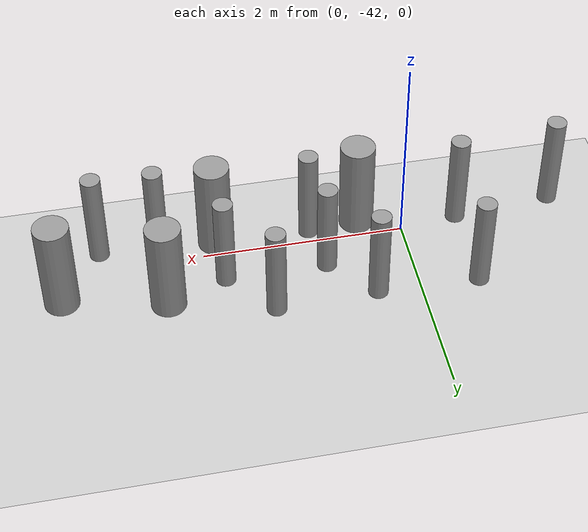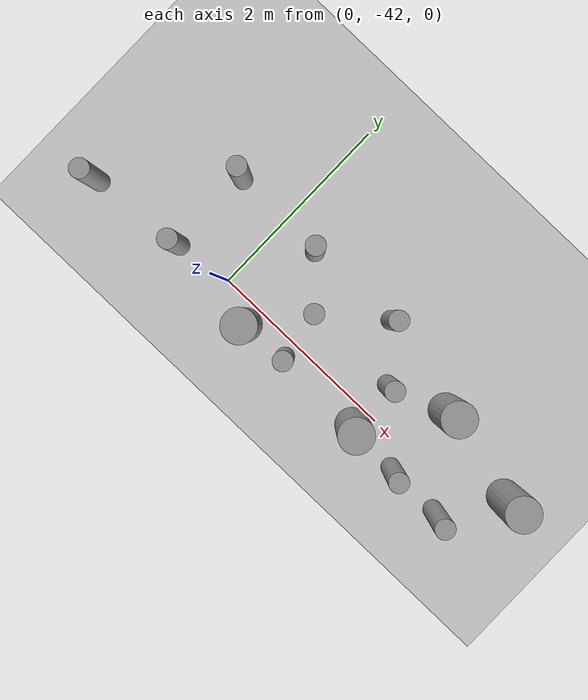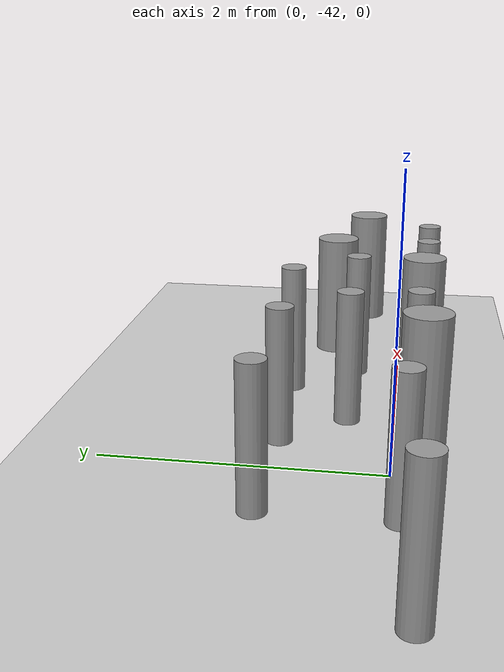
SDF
<sdf version="1.6">
 <world name="default">
  <model name="ground_plane">
   <static>1</static>
   <link name="link">
    <collision name="collision">
     <geometry><plane><normal>0 0 1</normal><size>100 100</size></plane></geometry>
     <surface><friction><ode><mu>100</mu><mu2>50</mu2></ode></friction></surface>
    </collision>
    <visual name="visual">
     <cast_shadows>0</cast_shadows>
     <geometry><plane><normal>0 0 1</normal><size>100 100</size></plane></geometry>
     <material>
      <script><uri>file://media/materials/scripts/gazebo.material</uri><name>Gazebo/Grey</name></script>
     </material>
    </visual>
   </link>
  </model>
  <model name="cyl_wall_clone_clone_2">
   <link name="link_0">
    <pose>-2.73893 -0.366465 0 0 -0 0</pose>
    <inertial>
     <mass>0.0374993</mass>
     <inertia>
      <ixx>0.00321281</ixx>
      <ixy>0</ixy>
      <ixz>0</ixz>
      <iyy>0.00321281</iyy>
      <iyz>0</iyz>
      <izz>0.000175774</izz>
     </inertia>
    </inertial>
    <visual name="visual">
     <geometry><cylinder><radius>0.0968661</radius><length>1</length></cylinder></geometry>
     <material>
      <lighting>1</lighting>
      <script><uri>file://media/materials/scripts/gazebo.material</uri><name>Gazebo/Grey</name></script>
      <ambient>0.3 0.3 0.3 1</ambient>
      <diffuse>0.7 0.7 0.7 1</diffuse>
      <specular>0.01 0.01 0.01 1</specular>
      <emissive>0 0 0 1</emissive>
     </material>
    </visual>
    <collision name="collision">
     <geometry><cylinder><radius>0.096866</radius><length>1</length></cylinder></geometry>
     <surface>
      <friction>
       <ode><mu>1</mu><mu2>1</mu2><fdir1>0 0 0</fdir1><slip1>0</slip1><slip2>0</slip2></ode>
       <torsional>
        <coefficient>1</coefficient>
        <patch_radius>0</patch_radius>
        <surface_radius>0</surface_radius>
        <use_patch_radius>1</use_patch_radius>
        <ode><slip>0</slip></ode>
       </torsional>
      </friction>
      <bounce><restitution_coefficient>0</restitution_coefficient><threshold>1e+06</threshold></bounce>
      <contact>
       <collide_without_contact>0</collide_without_contact>
       <collide_without_contact_bitmask>1</collide_without_contact_bitmask>
       <collide_bitmask>1</collide_bitmask>
       <ode>
        <soft_cfm>0</soft_cfm>
        <soft_erp>0.2</soft_erp>
        <kp>1e+13</kp>
        <kd>1</kd>
        <max_vel>0.01</max_vel>
        <min_depth>0</min_depth>
       </ode>
       <bullet>
        <split_impulse>1</split_impulse>
        <split_impulse_penetration_threshold>-0.01</split_impulse_penetration_threshold>
        <soft_cfm>0</soft_cfm>
        <soft_erp>0.2</soft_erp>
        <kp>1e+13</kp>
        <kd>1</kd>
       </bullet>
      </contact>
     </surface>
    </collision>
   </link>
   <link name="link_0_clone">
    <pose>-1.73893 0.61877 0 0 -0 0</pose>
    <inertial>
     <mass>0.0374993</mass>
     <inertia>
      <ixx>0.00321281</ixx>
      <ixy>0</ixy>
      <ixz>0</ixz>
      <iyy>0.00321281</iyy>
      <iyz>0</iyz>
      <izz>0.000175774</izz>
     </inertia>
    </inertial>
    <visual name="visual">
     <geometry><cylinder><radius>0.0968661</radius><length>1</length></cylinder></geometry>
     <material>
      <lighting>1</lighting>
      <script><uri>file://media/materials/scripts/gazebo.material</uri><name>Gazebo/Grey</name></script>
      <ambient>0.3 0.3 0.3 1</ambient>
      <diffuse>0.7 0.7 0.7 1</diffuse>
      <specular>0.01 0.01 0.01 1</specular>
      <emissive>0 0 0 1</emissive>
      <shader type="pixel"/>
     </material>
    </visual>
    <collision name="collision">
     <geometry><cylinder><radius>0.096866</radius><length>1</length></cylinder></geometry>
     <surface>
      <friction>
       <ode><mu>1</mu><mu2>1</mu2><fdir1>0 0 0</fdir1><slip1>0</slip1><slip2>0</slip2></ode>
       <torsional>
        <coefficient>1</coefficient>
        <patch_radius>0</patch_radius>
        <surface_radius>0</surface_radius>
        <use_patch_radius>1</use_patch_radius>
        <ode><slip>0</slip></ode>
       </torsional>
      </friction>
      <bounce><restitution_coefficient>0</restitution_coefficient><threshold>1e+06</threshold></bounce>
      <contact>
       <collide_without_contact>0</collide_without_contact>
       <collide_without_contact_bitmask>1</collide_without_contact_bitmask>
       <collide_bitmask>1</collide_bitmask>
       <ode>
        <soft_cfm>0</soft_cfm>
        <soft_erp>0.2</soft_erp>
        <kp>1e+13</kp>
        <kd>1</kd>
        <max_vel>0.01</max_vel>
        <min_depth>0</min_depth>
       </ode>
       <bullet>
        <split_impulse>1</split_impulse>
        <split_impulse_penetration_threshold>-0.01</split_impulse_penetration_threshold>
        <soft_cfm>0</soft_cfm>
        <soft_erp>0.2</soft_erp>
        <kp>1e+13</kp>
        <kd>1</kd>
       </bullet>
      </contact>
     </surface>
    </collision>
   </link>
   <link name="link_0_clone_clone">
    <pose>-0.327073 0.143919 0 0 -0 0</pose>
    <inertial>
     <mass>0.0374993</mass>
     <inertia>
      <ixx>0.00321281</ixx>
      <ixy>0</ixy>
      <ixz>0</ixz>
      <iyy>0.00321281</iyy>
      <iyz>0</iyz>
      <izz>0.000175774</izz>
     </inertia>
    </inertial>
    <visual name="visual">
     <geometry><cylinder><radius>0.0968661</radius><length>1</length></cylinder></geometry>
     <material>
      <lighting>1</lighting>
      <script><uri>file://media/materials/scripts/gazebo.material</uri><name>Gazebo/Grey</name></script>
      <ambient>0.3 0.3 0.3 1</ambient>
      <diffuse>0.7 0.7 0.7 1</diffuse>
      <specular>0.01 0.01 0.01 1</specular>
      <emissive>0 0 0 1</emissive>
      <shader type="pixel"/>
     </material>
    </visual>
    <collision name="collision">
     <geometry><cylinder><radius>0.096866</radius><length>1</length></cylinder></geometry>
     <surface>
      <friction>
       <ode><mu>1</mu><mu2>1</mu2><fdir1>0 0 0</fdir1><slip1>0</slip1><slip2>0</slip2></ode>
       <torsional>
        <coefficient>1</coefficient>
        <patch_radius>0</patch_radius>
        <surface_radius>0</surface_radius>
        <use_patch_radius>1</use_patch_radius>
        <ode><slip>0</slip></ode>
       </torsional>
      </friction>
      <bounce><restitution_coefficient>0</restitution_coefficient><threshold>1e+06</threshold></bounce>
      <contact>
       <collide_without_contact>0</collide_without_contact>
       <collide_without_contact_bitmask>1</collide_without_contact_bitmask>
       <collide_bitmask>1</collide_bitmask>
       <ode>
        <soft_cfm>0</soft_cfm>
        <soft_erp>0.2</soft_erp>
        <kp>1e+13</kp>
        <kd>1</kd>
        <max_vel>0.01</max_vel>
        <min_depth>0</min_depth>
       </ode>
       <bullet>
        <split_impulse>1</split_impulse>
        <split_impulse_penetration_threshold>-0.01</split_impulse_penetration_threshold>
        <soft_cfm>0</soft_cfm>
        <soft_erp>0.2</soft_erp>
        <kp>1e+13</kp>
        <kd>1</kd>
       </bullet>
      </contact>
     </surface>
    </collision>
   </link>
   <link name="link_0_clone_clone_0">
    <pose>1.26107 -0.419359 0 0 -0 0</pose>
    <inertial>
     <mass>0.0374993</mass>
     <inertia>
      <ixx>0.00321281</ixx>
      <ixy>0</ixy>
      <ixz>0</ixz>
      <iyy>0.00321281</iyy>
      <iyz>0</iyz>
      <izz>0.000175774</izz>
     </inertia>
    </inertial>
    <visual name="visual">
     <geometry><cylinder><radius>0.0968661</radius><length>1</length></cylinder></geometry>
     <material>
      <lighting>1</lighting>
      <script><uri>file://media/materials/scripts/gazebo.material</uri><name>Gazebo/Grey</name></script>
      <ambient>0.3 0.3 0.3 1</ambient>
      <diffuse>0.7 0.7 0.7 1</diffuse>
      <specular>0.01 0.01 0.01 1</specular>
      <emissive>0 0 0 1</emissive>
      <shader type="pixel"/>
     </material>
    </visual>
    <collision name="collision">
     <geometry><cylinder><radius>0.096866</radius><length>1</length></cylinder></geometry>
     <surface>
      <friction>
       <ode><mu>1</mu><mu2>1</mu2><fdir1>0 0 0</fdir1><slip1>0</slip1><slip2>0</slip2></ode>
       <torsional>
        <coefficient>1</coefficient>
        <patch_radius>0</patch_radius>
        <surface_radius>0</surface_radius>
        <use_patch_radius>1</use_patch_radius>
        <ode><slip>0</slip></ode>
       </torsional>
      </friction>
      <bounce><restitution_coefficient>0</restitution_coefficient><threshold>1e+06</threshold></bounce>
      <contact>
       <collide_without_contact>0</collide_without_contact>
       <collide_without_contact_bitmask>1</collide_without_contact_bitmask>
       <collide_bitmask>1</collide_bitmask>
       <ode>
        <soft_cfm>0</soft_cfm>
        <soft_erp>0.2</soft_erp>
        <kp>1e+13</kp>
        <kd>1</kd>
        <max_vel>0.01</max_vel>
        <min_depth>0</min_depth>
       </ode>
       <bullet>
        <split_impulse>1</split_impulse>
        <split_impulse_penetration_threshold>-0.01</split_impulse_penetration_threshold>
        <soft_cfm>0</soft_cfm>
        <soft_erp>0.2</soft_erp>
        <kp>1e+13</kp>
        <kd>1</kd>
       </bullet>
      </contact>
     </surface>
    </collision>
   </link>
   <link name="link_0_clone_clone_1">
    <pose>-1.73893 -0.277168 0 0 -0 0</pose>
    <inertial>
     <mass>0.0374993</mass>
     <inertia>
      <ixx>0.00321281</ixx>
      <ixy>0</ixy>
      <ixz>0</ixz>
      <iyy>0.00321281</iyy>
      <iyz>0</iyz>
      <izz>0.000175774</izz>
     </inertia>
    </inertial>
    <visual name="visual">
     <geometry><cylinder><radius>0.0968661</radius><length>1</length></cylinder></geometry>
     <material>
      <lighting>1</lighting>
      <script><uri>file://media/materials/scripts/gazebo.material</uri><name>Gazebo/Grey</name></script>
      <ambient>0.3 0.3 0.3 1</ambient>
      <diffuse>0.7 0.7 0.7 1</diffuse>
      <specular>0.01 0.01 0.01 1</specular>
      <emissive>0 0 0 1</emissive>
      <shader type="pixel"/>
     </material>
    </visual>
    <collision name="collision">
     <geometry><cylinder><radius>0.096866</radius><length>1</length></cylinder></geometry>
     <surface>
      <friction>
       <ode><mu>1</mu><mu2>1</mu2><fdir1>0 0 0</fdir1><slip1>0</slip1><slip2>0</slip2></ode>
       <torsional>
        <coefficient>1</coefficient>
        <patch_radius>0</patch_radius>
        <surface_radius>0</surface_radius>
        <use_patch_radius>1</use_patch_radius>
        <ode><slip>0</slip></ode>
       </torsional>
      </friction>
      <bounce><restitution_coefficient>0</restitution_coefficient><threshold>1e+06</threshold></bounce>
      <contact>
       <collide_without_contact>0</collide_without_contact>
       <collide_without_contact_bitmask>1</collide_without_contact_bitmask>
       <collide_bitmask>1</collide_bitmask>
       <ode>
        <soft_cfm>0</soft_cfm>
        <soft_erp>0.2</soft_erp>
        <kp>1e+13</kp>
        <kd>1</kd>
        <max_vel>0.01</max_vel>
        <min_depth>0</min_depth>
       </ode>
       <bullet>
        <split_impulse>1</split_impulse>
        <split_impulse_penetration_threshold>-0.01</split_impulse_penetration_threshold>
        <soft_cfm>0</soft_cfm>
        <soft_erp>0.2</soft_erp>
        <kp>1e+13</kp>
        <kd>1</kd>
       </bullet>
      </contact>
     </surface>
    </collision>
   </link>
   <link name="link_0_clone_clone_2">
    <pose>-0.738934 0.593961 0 0 -0 0</pose>
    <inertial>
     <mass>0.0374993</mass>
     <inertia>
      <ixx>0.00321281</ixx>
      <ixy>0</ixy>
      <ixz>0</ixz>
      <iyy>0.00321281</iyy>
      <iyz>0</iyz>
      <izz>0.000175774</izz>
     </inertia>
    </inertial>
    <visual name="visual">
     <geometry><cylinder><radius>0.0968661</radius><length>1</length></cylinder></geometry>
     <material>
      <lighting>1</lighting>
      <script><uri>file://media/materials/scripts/gazebo.material</uri><name>Gazebo/Grey</name></script>
      <ambient>0.3 0.3 0.3 1</ambient>
      <diffuse>0.7 0.7 0.7 1</diffuse>
      <specular>0.01 0.01 0.01 1</specular>
      <emissive>0 0 0 1</emissive>
      <shader type="pixel"/>
     </material>
    </visual>
    <collision name="collision">
     <geometry><cylinder><radius>0.096866</radius><length>1</length></cylinder></geometry>
     <surface>
      <friction>
       <ode><mu>1</mu><mu2>1</mu2><fdir1>0 0 0</fdir1><slip1>0</slip1><slip2>0</slip2></ode>
       <torsional>
        <coefficient>1</coefficient>
        <patch_radius>0</patch_radius>
        <surface_radius>0</surface_radius>
        <use_patch_radius>1</use_patch_radius>
        <ode><slip>0</slip></ode>
       </torsional>
      </friction>
      <bounce><restitution_coefficient>0</restitution_coefficient><threshold>1e+06</threshold></bounce>
      <contact>
       <collide_without_contact>0</collide_without_contact>
       <collide_without_contact_bitmask>1</collide_without_contact_bitmask>
       <collide_bitmask>1</collide_bitmask>
       <ode>
        <soft_cfm>0</soft_cfm>
        <soft_erp>0.2</soft_erp>
        <kp>1e+13</kp>
        <kd>1</kd>
        <max_vel>0.01</max_vel>
        <min_depth>0</min_depth>
       </ode>
       <bullet>
        <split_impulse>1</split_impulse>
        <split_impulse_penetration_threshold>-0.01</split_impulse_penetration_threshold>
        <soft_cfm>0</soft_cfm>
        <soft_erp>0.2</soft_erp>
        <kp>1e+13</kp>
        <kd>1</kd>
       </bullet>
      </contact>
     </surface>
    </collision>
   </link>
   <link name="link_0_clone_clone_3">
    <pose>0.261066 0.624849 0 0 -0 0</pose>
    <inertial>
     <mass>0.0374993</mass>
     <inertia>
      <ixx>0.00321281</ixx>
      <ixy>0</ixy>
      <ixz>0</ixz>
      <iyy>0.00321281</iyy>
      <iyz>0</iyz>
      <izz>0.000175774</izz>
     </inertia>
    </inertial>
    <visual name="visual">
     <geometry><cylinder><radius>0.0968661</radius><length>1</length></cylinder></geometry>
     <material>
      <lighting>1</lighting>
      <script><uri>file://media/materials/scripts/gazebo.material</uri><name>Gazebo/Grey</name></script>
      <ambient>0.3 0.3 0.3 1</ambient>
      <diffuse>0.7 0.7 0.7 1</diffuse>
      <specular>0.01 0.01 0.01 1</specular>
      <emissive>0 0 0 1</emissive>
      <shader type="pixel"/>
     </material>
    </visual>
    <collision name="collision">
     <geometry><cylinder><radius>0.096866</radius><length>1</length></cylinder></geometry>
     <surface>
      <friction>
       <ode><mu>1</mu><mu2>1</mu2><fdir1>0 0 0</fdir1><slip1>0</slip1><slip2>0</slip2></ode>
       <torsional>
        <coefficient>1</coefficient>
        <patch_radius>0</patch_radius>
        <surface_radius>0</surface_radius>
        <use_patch_radius>1</use_patch_radius>
        <ode><slip>0</slip></ode>
       </torsional>
      </friction>
      <bounce><restitution_coefficient>0</restitution_coefficient><threshold>1e+06</threshold></bounce>
      <contact>
       <collide_without_contact>0</collide_without_contact>
       <collide_without_contact_bitmask>1</collide_without_contact_bitmask>
       <collide_bitmask>1</collide_bitmask>
       <ode>
        <soft_cfm>0</soft_cfm>
        <soft_erp>0.2</soft_erp>
        <kp>1e+13</kp>
        <kd>1</kd>
        <max_vel>0.01</max_vel>
        <min_depth>0</min_depth>
       </ode>
       <bullet>
        <split_impulse>1</split_impulse>
        <split_impulse_penetration_threshold>-0.01</split_impulse_penetration_threshold>
        <soft_cfm>0</soft_cfm>
        <soft_erp>0.2</soft_erp>
        <kp>1e+13</kp>
        <kd>1</kd>
       </bullet>
      </contact>
     </surface>
    </collision>
   </link>
   <link name="link_0_clone_clone_4">
    <pose>-0.239049 -0.353105 0 0 -0 0</pose>
    <inertial>
     <mass>0.0374993</mass>
     <inertia>
      <ixx>0.00321281</ixx>
      <ixy>0</ixy>
      <ixz>0</ixz>
      <iyy>0.00321281</iyy>
      <iyz>0</iyz>
      <izz>0.000175774</izz>
     </inertia>
    </inertial>
    <visual name="visual">
     <geometry><cylinder><radius>0.0968661</radius><length>1</length></cylinder></geometry>
     <material>
      <lighting>1</lighting>
      <script><uri>file://media/materials/scripts/gazebo.material</uri><name>Gazebo/Grey</name></script>
      <ambient>0.3 0.3 0.3 1</ambient>
      <diffuse>0.7 0.7 0.7 1</diffuse>
      <specular>0.01 0.01 0.01 1</specular>
      <emissive>0 0 0 1</emissive>
      <shader type="pixel"/>
     </material>
    </visual>
    <collision name="collision">
     <geometry><cylinder><radius>0.096866</radius><length>1</length></cylinder></geometry>
     <surface>
      <friction>
       <ode><mu>1</mu><mu2>1</mu2><fdir1>0 0 0</fdir1><slip1>0</slip1><slip2>0</slip2></ode>
       <torsional>
        <coefficient>1</coefficient>
        <patch_radius>0</patch_radius>
        <surface_radius>0</surface_radius>
        <use_patch_radius>1</use_patch_radius>
        <ode><slip>0</slip></ode>
       </torsional>
      </friction>
      <bounce><restitution_coefficient>0</restitution_coefficient><threshold>1e+06</threshold></bounce>
      <contact>
       <collide_without_contact>0</collide_without_contact>
       <collide_without_contact_bitmask>1</collide_without_contact_bitmask>
       <collide_bitmask>1</collide_bitmask>
       <ode>
        <soft_cfm>0</soft_cfm>
        <soft_erp>0.2</soft_erp>
        <kp>1e+13</kp>
        <kd>1</kd>
        <max_vel>0.01</max_vel>
        <min_depth>0</min_depth>
       </ode>
       <bullet>
        <split_impulse>1</split_impulse>
        <split_impulse_penetration_threshold>-0.01</split_impulse_penetration_threshold>
        <soft_cfm>0</soft_cfm>
        <soft_erp>0.2</soft_erp>
        <kp>1e+13</kp>
        <kd>1</kd>
       </bullet>
      </contact>
     </surface>
    </collision>
   </link>
   <link name="link_0_clone_clone_5">
    <pose>0.672792 0.143919 0 0 -0 0</pose>
    <inertial>
     <mass>0.0374993</mass>
     <inertia>
      <ixx>0.00321281</ixx>
      <ixy>0</ixy>
      <ixz>0</ixz>
      <iyy>0.00321281</iyy>
      <iyz>0</iyz>
      <izz>0.000175774</izz>
     </inertia>
    </inertial>
    <visual name="visual">
     <geometry><cylinder><radius>0.0968661</radius><length>1</length></cylinder></geometry>
     <material>
      <lighting>1</lighting>
      <script><uri>file://media/materials/scripts/gazebo.material</uri><name>Gazebo/Grey</name></script>
      <ambient>0.3 0.3 0.3 1</ambient>
      <diffuse>0.7 0.7 0.7 1</diffuse>
      <specular>0.01 0.01 0.01 1</specular>
      <emissive>0 0 0 1</emissive>
      <shader type="pixel"/>
     </material>
    </visual>
    <collision name="collision">
     <geometry><cylinder><radius>0.096866</radius><length>1</length></cylinder></geometry>
     <surface>
      <friction>
       <ode><mu>1</mu><mu2>1</mu2><fdir1>0 0 0</fdir1><slip1>0</slip1><slip2>0</slip2></ode>
       <torsional>
        <coefficient>1</coefficient>
        <patch_radius>0</patch_radius>
        <surface_radius>0</surface_radius>
        <use_patch_radius>1</use_patch_radius>
        <ode><slip>0</slip></ode>
       </torsional>
      </friction>
      <bounce><restitution_coefficient>0</restitution_coefficient><threshold>1e+06</threshold></bounce>
      <contact>
       <collide_without_contact>0</collide_without_contact>
       <collide_without_contact_bitmask>1</collide_without_contact_bitmask>
       <collide_bitmask>1</collide_bitmask>
       <ode>
        <soft_cfm>0</soft_cfm>
        <soft_erp>0.2</soft_erp>
        <kp>1e+13</kp>
        <kd>1</kd>
        <max_vel>0.01</max_vel>
        <min_depth>0</min_depth>
       </ode>
       <bullet>
        <split_impulse>1</split_impulse>
        <split_impulse_penetration_threshold>-0.01</split_impulse_penetration_threshold>
        <soft_cfm>0</soft_cfm>
        <soft_erp>0.2</soft_erp>
        <kp>1e+13</kp>
        <kd>1</kd>
       </bullet>
      </contact>
     </surface>
    </collision>
   </link>
   <link name="link_0_clone_clone_6">
    <pose>1.84596 -0.433423 0 0 -0 0</pose>
    <inertial>
     <mass>0.0374993</mass>
     <inertia>
      <ixx>0.00321281</ixx>
      <ixy>0</ixy>
      <ixz>0</ixz>
      <iyy>0.00321281</iyy>
      <iyz>0</iyz>
      <izz>0.000175774</izz>
     </inertia>
    </inertial>
    <visual name="visual">
     <geometry><cylinder><radius>0.0968661</radius><length>1</length></cylinder></geometry>
     <material>
      <lighting>1</lighting>
      <script><uri>file://media/materials/scripts/gazebo.material</uri><name>Gazebo/Grey</name></script>
      <ambient>0.3 0.3 0.3 1</ambient>
      <diffuse>0.7 0.7 0.7 1</diffuse>
      <specular>0.01 0.01 0.01 1</specular>
      <emissive>0 0 0 1</emissive>
      <shader type="pixel"/>
     </material>
    </visual>
    <collision name="collision">
     <geometry><cylinder><radius>0.096866</radius><length>1</length></cylinder></geometry>
     <surface>
      <friction>
       <ode><mu>1</mu><mu2>1</mu2><fdir1>0 0 0</fdir1><slip1>0</slip1><slip2>0</slip2></ode>
       <torsional>
        <coefficient>1</coefficient>
        <patch_radius>0</patch_radius>
        <surface_radius>0</surface_radius>
        <use_patch_radius>1</use_patch_radius>
        <ode><slip>0</slip></ode>
       </torsional>
      </friction>
      <bounce><restitution_coefficient>0</restitution_coefficient><threshold>1e+06</threshold></bounce>
      <contact>
       <collide_without_contact>0</collide_without_contact>
       <collide_without_contact_bitmask>1</collide_without_contact_bitmask>
       <collide_bitmask>1</collide_bitmask>
       <ode>
        <soft_cfm>0</soft_cfm>
        <soft_erp>0.2</soft_erp>
        <kp>1e+13</kp>
        <kd>1</kd>
        <max_vel>0.01</max_vel>
        <min_depth>0</min_depth>
       </ode>
       <bullet>
        <split_impulse>1</split_impulse>
        <split_impulse_penetration_threshold>-0.01</split_impulse_penetration_threshold>
        <soft_cfm>0</soft_cfm>
        <soft_erp>0.2</soft_erp>
        <kp>1e+13</kp>
        <kd>1</kd>
       </bullet>
      </contact>
     </surface>
    </collision>
   </link>
   <link name="link_1">
    <pose>-0.738934 -0.397931 0 0 -0 0</pose>
    <inertial>
     <mass>0.117398</mass>
     <inertia>
      <ixx>0.0106445</ixx>
      <ixy>0</ixy>
      <ixz>0</ixz>
      <iyy>0.0106445</iyy>
      <iyz>0</iyz>
      <izz>0.00172278</izz>
     </inertia>
    </inertial>
    <visual name="visual">
     <geometry><cylinder><radius>0.171317</radius><length>1</length></cylinder></geometry>
     <material>
      <lighting>1</lighting>
      <script><uri>file://media/materials/scripts/gazebo.material</uri><name>Gazebo/Grey</name></script>
      <ambient>0.3 0.3 0.3 1</ambient>
      <diffuse>0.7 0.7 0.7 1</diffuse>
      <specular>0.01 0.01 0.01 1</specular>
      <emissive>0 0 0 1</emissive>
     </material>
    </visual>
    <collision name="collision">
     <geometry><cylinder><radius>0.171317</radius><length>1</length></cylinder></geometry>
     <surface>
      <friction>
       <ode><mu>1</mu><mu2>1</mu2><fdir1>0 0 0</fdir1><slip1>0</slip1><slip2>0</slip2></ode>
       <torsional>
        <coefficient>1</coefficient>
        <patch_radius>0</patch_radius>
        <surface_radius>0</surface_radius>
        <use_patch_radius>1</use_patch_radius>
        <ode><slip>0</slip></ode>
       </torsional>
      </friction>
      <bounce><restitution_coefficient>0</restitution_coefficient><threshold>1e+06</threshold></bounce>
      <contact>
       <collide_without_contact>0</collide_without_contact>
       <collide_without_contact_bitmask>1</collide_without_contact_bitmask>
       <collide_bitmask>1</collide_bitmask>
       <ode>
        <soft_cfm>0</soft_cfm>
        <soft_erp>0.2</soft_erp>
        <kp>1e+13</kp>
        <kd>1</kd>
        <max_vel>0.01</max_vel>
        <min_depth>0</min_depth>
       </ode>
       <bullet>
        <split_impulse>1</split_impulse>
        <split_impulse_penetration_threshold>-0.01</split_impulse_penetration_threshold>
        <soft_cfm>0</soft_cfm>
        <soft_erp>0.2</soft_erp>
        <kp>1e+13</kp>
        <kd>1</kd>
       </bullet>
      </contact>
     </surface>
    </collision>
   </link>
   <link name="link_1_clone">
    <pose>0.697784 -0.380861 0 0 -0 0</pose>
    <inertial>
     <mass>0.117398</mass>
     <inertia>
      <ixx>0.0106445</ixx>
      <ixy>0</ixy>
      <ixz>0</ixz>
      <iyy>0.0106445</iyy>
      <iyz>0</iyz>
      <izz>0.00172278</izz>
     </inertia>
    </inertial>
    <visual name="visual">
     <geometry><cylinder><radius>0.171317</radius><length>1</length></cylinder></geometry>
     <material>
      <lighting>1</lighting>
      <script><uri>file://media/materials/scripts/gazebo.material</uri><name>Gazebo/Grey</name></script>
      <ambient>0.3 0.3 0.3 1</ambient>
      <diffuse>0.7 0.7 0.7 1</diffuse>
      <specular>0.01 0.01 0.01 1</specular>
      <emissive>0 0 0 1</emissive>
      <shader type="pixel"/>
     </material>
    </visual>
    <collision name="collision">
     <geometry><cylinder><radius>0.171317</radius><length>1</length></cylinder></geometry>
     <surface>
      <friction>
       <ode><mu>1</mu><mu2>1</mu2><fdir1>0 0 0</fdir1><slip1>0</slip1><slip2>0</slip2></ode>
       <torsional>
        <coefficient>1</coefficient>
        <patch_radius>0</patch_radius>
        <surface_radius>0</surface_radius>
        <use_patch_radius>1</use_patch_radius>
        <ode><slip>0</slip></ode>
       </torsional>
      </friction>
      <bounce><restitution_coefficient>0</restitution_coefficient><threshold>1e+06</threshold></bounce>
      <contact>
       <collide_without_contact>0</collide_without_contact>
       <collide_without_contact_bitmask>1</collide_without_contact_bitmask>
       <collide_bitmask>1</collide_bitmask>
       <ode>
        <soft_cfm>0</soft_cfm>
        <soft_erp>0.2</soft_erp>
        <kp>1e+13</kp>
        <kd>1</kd>
        <max_vel>0.01</max_vel>
        <min_depth>0</min_depth>
       </ode>
       <bullet>
        <split_impulse>1</split_impulse>
        <split_impulse_penetration_threshold>-0.01</split_impulse_penetration_threshold>
        <soft_cfm>0</soft_cfm>
        <soft_erp>0.2</soft_erp>
        <kp>1e+13</kp>
        <kd>1</kd>
       </bullet>
      </contact>
     </surface>
    </collision>
   </link>
   <link name="link_1_clone_0">
    <pose>1.26107 0.358974 0 0 -0 0</pose>
    <inertial>
     <mass>0.117398</mass>
     <inertia>
      <ixx>0.0106445</ixx>
      <ixy>0</ixy>
      <ixz>0</ixz>
      <iyy>0.0106445</iyy>
      <iyz>0</iyz>
      <izz>0.00172278</izz>
     </inertia>
    </inertial>
    <visual name="visual">
     <geometry><cylinder><radius>0.171317</radius><length>1</length></cylinder></geometry>
     <material>
      <lighting>1</lighting>
      <script><uri>file://media/materials/scripts/gazebo.material</uri><name>Gazebo/Grey</name></script>
      <ambient>0.3 0.3 0.3 1</ambient>
      <diffuse>0.7 0.7 0.7 1</diffuse>
      <specular>0.01 0.01 0.01 1</specular>
      <emissive>0 0 0 1</emissive>
      <shader type="pixel"/>
     </material>
    </visual>
    <collision name="collision">
     <geometry><cylinder><radius>0.171317</radius><length>1</length></cylinder></geometry>
     <surface>
      <friction>
       <ode><mu>1</mu><mu2>1</mu2><fdir1>0 0 0</fdir1><slip1>0</slip1><slip2>0</slip2></ode>
       <torsional>
        <coefficient>1</coefficient>
        <patch_radius>0</patch_radius>
        <surface_radius>0</surface_radius>
        <use_patch_radius>1</use_patch_radius>
        <ode><slip>0</slip></ode>
       </torsional>
      </friction>
      <bounce><restitution_coefficient>0</restitution_coefficient><threshold>1e+06</threshold></bounce>
      <contact>
       <collide_without_contact>0</collide_without_contact>
       <collide_without_contact_bitmask>1</collide_without_contact_bitmask>
       <collide_bitmask>1</collide_bitmask>
       <ode>
        <soft_cfm>0</soft_cfm>
        <soft_erp>0.2</soft_erp>
        <kp>1e+13</kp>
        <kd>1</kd>
        <max_vel>0.01</max_vel>
        <min_depth>0</min_depth>
       </ode>
       <bullet>
        <split_impulse>1</split_impulse>
        <split_impulse_penetration_threshold>-0.01</split_impulse_penetration_threshold>
        <soft_cfm>0</soft_cfm>
        <soft_erp>0.2</soft_erp>
        <kp>1e+13</kp>
        <kd>1</kd>
       </bullet>
      </contact>
     </surface>
    </collision>
   </link>
   <link name="link_1_clone_1">
    <pose>2.26107 0.143919 0 0 -0 0</pose>
    <inertial>
     <mass>0.117398</mass>
     <inertia>
      <ixx>0.0106445</ixx>
      <ixy>0</ixy>
      <ixz>0</ixz>
      <iyy>0.0106445</iyy>
      <iyz>0</iyz>
      <izz>0.00172278</izz>
     </inertia>
    </inertial>
    <visual name="visual">
     <geometry><cylinder><radius>0.171317</radius><length>1</length></cylinder></geometry>
     <material>
      <lighting>1</lighting>
      <script><uri>file://media/materials/scripts/gazebo.material</uri><name>Gazebo/Grey</name></script>
      <ambient>0.3 0.3 0.3 1</ambient>
      <diffuse>0.7 0.7 0.7 1</diffuse>
      <specular>0.01 0.01 0.01 1</specular>
      <emissive>0 0 0 1</emissive>
      <shader type="pixel"/>
     </material>
    </visual>
    <collision name="collision">
     <geometry><cylinder><radius>0.171317</radius><length>1</length></cylinder></geometry>
     <surface>
      <friction>
       <ode><mu>1</mu><mu2>1</mu2><fdir1>0 0 0</fdir1><slip1>0</slip1><slip2>0</slip2></ode>
       <torsional>
        <coefficient>1</coefficient>
        <patch_radius>0</patch_radius>
        <surface_radius>0</surface_radius>
        <use_patch_radius>1</use_patch_radius>
        <ode><slip>0</slip></ode>
       </torsional>
      </friction>
      <bounce><restitution_coefficient>0</restitution_coefficient><threshold>1e+06</threshold></bounce>
      <contact>
       <collide_without_contact>0</collide_without_contact>
       <collide_without_contact_bitmask>1</collide_without_contact_bitmask>
       <collide_bitmask>1</collide_bitmask>
       <ode>
        <soft_cfm>0</soft_cfm>
        <soft_erp>0.2</soft_erp>
        <kp>1e+13</kp>
        <kd>1</kd>
        <max_vel>0.01</max_vel>
        <min_depth>0</min_depth>
       </ode>
       <bullet>
        <split_impulse>1</split_impulse>
        <split_impulse_penetration_threshold>-0.01</split_impulse_penetration_threshold>
        <soft_cfm>0</soft_cfm>
        <soft_erp>0.2</soft_erp>
        <kp>1e+13</kp>
        <kd>1</kd>
       </bullet>
      </contact>
     </surface>
    </collision>
   </link>
   <static>1</static>
   <pose>1.16064 -41.7987 0.5 0 -0 0</pose>
  </model>
 </world>
</sdf>
